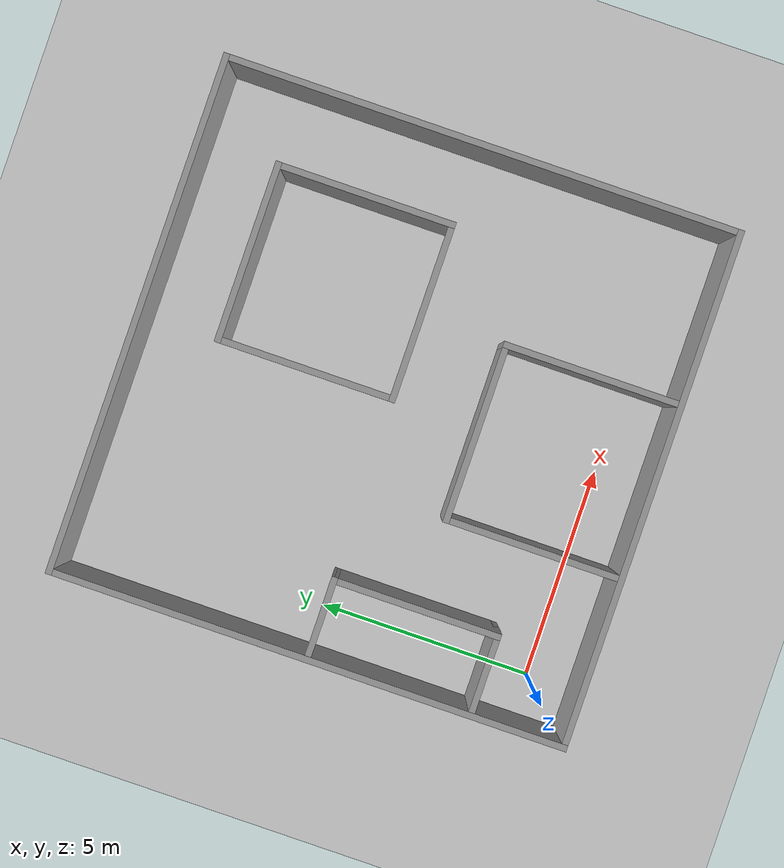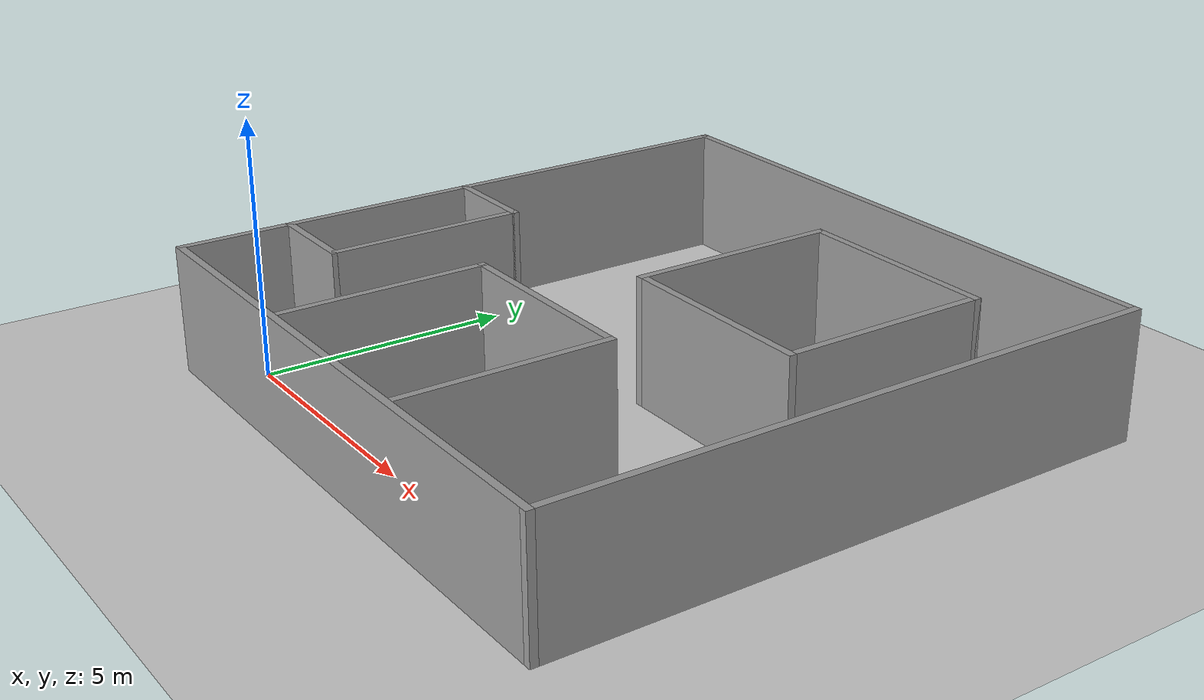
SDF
<sdf version="1.6">
 <world name="default">
  <light name="sun" type="directional">
   <pose>0 0 10 0 -0 0</pose>
   <diffuse>0.8 0.8 0.8 1</diffuse>
   <specular>0.2 0.2 0.2 1</specular>
   <attenuation>
    <range>1000</range>
    <constant>0.9</constant>
    <linear>0.01</linear>
    <quadratic>0.001</quadratic>
   </attenuation>
   <direction>-0.5 0.1 -0.9</direction>
  </light>
  <model name="ground_plane">
   <static>1</static>
   <link name="link">
    <collision name="collision">
     <geometry><plane><normal>0 0 1</normal><size>100 100</size></plane></geometry>
     <surface>
      <contact><collide_bitmask>65535</collide_bitmask></contact>
      <friction><ode><mu>100</mu><mu2>50</mu2></ode></friction>
     </surface>
    </collision>
    <visual name="visual">
     <cast_shadows>0</cast_shadows>
     <geometry><plane><normal>0 0 1</normal><size>100 100</size></plane></geometry>
     <material>
      <script><uri>file://media/materials/scripts/gazebo.material</uri><name>Gazebo/Grey</name></script>
     </material>
    </visual>
   </link>
  </model>
  <gravity>0 0 -9.8</gravity>
  <magnetic_field>6e-06 2.3e-05 -4.2e-05</magnetic_field>
  <atmosphere type="adiabatic"/>
  <physics name="default_physics" default="0" type="ode">
   <max_step_size>0.001</max_step_size>
   <real_time_factor>1</real_time_factor>
   <real_time_update_rate>1000</real_time_update_rate>
  </physics>
  <scene><ambient>0.4 0.4 0.4 1</ambient><background>0.7 0.7 0.7 1</background><shadows>1</shadows></scene>
  <spherical_coordinates>
   <surface_model>EARTH_WGS84</surface_model>
   <latitude_deg>0</latitude_deg>
   <longitude_deg>0</longitude_deg>
   <elevation>0</elevation>
   <heading_deg>0</heading_deg>
  </spherical_coordinates>
  <model name="Room-1">
   <pose>5.04491 4.96478 0 0 0 -1.57273</pose>
   <link name="Wall_76">
    <collision name="Wall_76_Collision">
     <geometry><box><size>12.25 0.15 2.5</size></box></geometry>
     <pose>0 0 1.25 0 -0 0</pose>
    </collision>
    <visual name="Wall_76_Visual">
     <pose>0 0 1.25 0 -0 0</pose>
     <geometry><box><size>12.25 0.15 2.5</size></box></geometry>
     <material>
      <script><uri>file://media/materials/scripts/gazebo.material</uri><name>Gazebo/Grey</name></script>
      <ambient>1 1 1 1</ambient>
     </material>
     <meta><layer>0</layer></meta>
    </visual>
    <pose>-6.05 0 0 0 -0 -1.5708</pose>
   </link>
   <link name="Wall_77">
    <collision name="Wall_77_Collision">
     <geometry><box><size>12.25 0.15 2.5</size></box></geometry>
     <pose>0 0 1.25 0 -0 0</pose>
    </collision>
    <visual name="Wall_77_Visual">
     <pose>0 0 1.25 0 -0 0</pose>
     <geometry><box><size>12.25 0.15 2.5</size></box></geometry>
     <material>
      <script><uri>file://media/materials/scripts/gazebo.material</uri><name>Gazebo/Grey</name></script>
      <ambient>1 1 1 1</ambient>
     </material>
     <meta><layer>0</layer></meta>
    </visual>
    <pose>-0 -6.05 0 0 -0 0</pose>
   </link>
   <link name="Wall_78">
    <collision name="Wall_78_Collision">
     <geometry><box><size>12.25 0.15 2.5</size></box></geometry>
     <pose>0 0 1.25 0 -0 0</pose>
    </collision>
    <visual name="Wall_78_Visual">
     <pose>0 0 1.25 0 -0 0</pose>
     <geometry><box><size>12.25 0.15 2.5</size></box></geometry>
     <material>
      <script><uri>file://media/materials/scripts/gazebo.material</uri><name>Gazebo/Grey</name></script>
      <ambient>1 1 1 1</ambient>
     </material>
     <meta><layer>0</layer></meta>
    </visual>
    <pose>6.05 0 0 0 -0 1.5708</pose>
   </link>
   <link name="Wall_79">
    <collision name="Wall_79_Collision">
     <geometry><box><size>12.25 0.15 2.5</size></box></geometry>
     <pose>0 0 1.25 0 -0 0</pose>
    </collision>
    <visual name="Wall_79_Visual">
     <pose>0 0 1.25 0 -0 0</pose>
     <geometry><box><size>12.25 0.15 2.5</size></box></geometry>
     <material>
      <script><uri>file://media/materials/scripts/gazebo.material</uri><name>Gazebo/Grey</name></script>
      <ambient>1 1 1 1</ambient>
     </material>
     <meta><layer>0</layer></meta>
    </visual>
    <pose>-0 6.05 0 0 -0 3.14159</pose>
   </link>
   <link name="Wall_81">
    <collision name="Wall_81_Collision">
     <geometry><box><size>4.25 0.15 2.5</size></box></geometry>
     <pose>0 0 1.25 0 -0 0</pose>
    </collision>
    <visual name="Wall_81_Visual">
     <pose>0 0 1.25 0 -0 0</pose>
     <geometry><box><size>4.25 0.15 2.5</size></box></geometry>
     <material>
      <script><uri>file://media/materials/scripts/gazebo.material</uri><name>Gazebo/Grey</name></script>
      <ambient>1 1 1 1</ambient>
     </material>
     <meta><layer>0</layer></meta>
    </visual>
    <pose>3.98765 2.00315 0 0 -0 3.14159</pose>
   </link>
   <link name="Wall_82">
    <collision name="Wall_82_Collision">
     <geometry><box><size>4.25 0.15 2.5</size></box></geometry>
     <pose>0 0 1.25 0 -0 0</pose>
    </collision>
    <visual name="Wall_82_Visual">
     <pose>0 0 1.25 0 -0 0</pose>
     <geometry><box><size>4.25 0.15 2.5</size></box></geometry>
     <material>
      <script><uri>file://media/materials/scripts/gazebo.material</uri><name>Gazebo/Grey</name></script>
      <ambient>1 1 1 1</ambient>
     </material>
     <meta><layer>0</layer></meta>
    </visual>
    <pose>1.93765 -0.04685 0 0 -0 -1.5708</pose>
   </link>
   <link name="Wall_83">
    <collision name="Wall_83_Collision">
     <geometry><box><size>4.25 0.15 2.5</size></box></geometry>
     <pose>0 0 1.25 0 -0 0</pose>
    </collision>
    <visual name="Wall_83_Visual">
     <pose>0 0 1.25 0 -0 0</pose>
     <geometry><box><size>4.25 0.15 2.5</size></box></geometry>
     <material>
      <script><uri>file://media/materials/scripts/gazebo.material</uri><name>Gazebo/Grey</name></script>
      <ambient>1 1 1 1</ambient>
     </material>
     <meta><layer>0</layer></meta>
    </visual>
    <pose>3.98765 -2.09685 0 0 -0 0</pose>
   </link>
   <link name="Wall_85">
    <collision name="Wall_85_Collision">
     <geometry><box><size>2 0.15 2.5</size></box></geometry>
     <pose>0 0 1.25 0 -0 0</pose>
    </collision>
    <visual name="Wall_85_Visual">
     <pose>0 0 1.25 0 -0 0</pose>
     <geometry><box><size>2 0.15 2.5</size></box></geometry>
     <material>
      <script><uri>file://media/materials/scripts/gazebo.material</uri><name>Gazebo/Grey</name></script>
      <ambient>1 1 1 1</ambient>
     </material>
     <meta><layer>0</layer></meta>
    </visual>
    <pose>0.00705 -5.11265 0 0 -0 1.5708</pose>
   </link>
   <link name="Wall_86">
    <collision name="Wall_86_Collision">
     <geometry><box><size>4 0.15 2.5</size></box></geometry>
     <pose>0 0 1.25 0 -0 0</pose>
    </collision>
    <visual name="Wall_86_Visual">
     <pose>0 0 1.25 0 -0 0</pose>
     <geometry><box><size>4 0.15 2.5</size></box></geometry>
     <material>
      <script><uri>file://media/materials/scripts/gazebo.material</uri><name>Gazebo/Grey</name></script>
      <ambient>1 1 1 1</ambient>
     </material>
     <meta><layer>0</layer></meta>
    </visual>
    <pose>1.93205 -4.18765 0 0 -0 0</pose>
   </link>
   <link name="Wall_87">
    <collision name="Wall_87_Collision">
     <geometry><box><size>2 0.15 2.5</size></box></geometry>
     <pose>0 0 1.25 0 -0 0</pose>
    </collision>
    <visual name="Wall_87_Visual">
     <pose>0 0 1.25 0 -0 0</pose>
     <geometry><box><size>2 0.15 2.5</size></box></geometry>
     <material>
      <script><uri>file://media/materials/scripts/gazebo.material</uri><name>Gazebo/Grey</name></script>
      <ambient>1 1 1 1</ambient>
     </material>
     <meta><layer>0</layer></meta>
    </visual>
    <pose>3.85705 -5.11265 0 0 -0 -1.5708</pose>
   </link>
   <link name="Wall_89">
    <collision name="Wall_89_Collision">
     <geometry><box><size>4.25 0.15 2.5</size></box></geometry>
     <pose>0 0 1.25 0 -0 0</pose>
    </collision>
    <visual name="Wall_89_Visual">
     <pose>0 0 1.25 0 -0 0</pose>
     <geometry><box><size>4.25 0.15 2.5</size></box></geometry>
     <material>
      <script><uri>file://media/materials/scripts/gazebo.material</uri><name>Gazebo/Grey</name></script>
      <ambient>1 1 1 1</ambient>
     </material>
     <meta><layer>0</layer></meta>
    </visual>
    <pose>-4.17205 2.09585 0 0 -0 1.5708</pose>
   </link>
   <link name="Wall_90">
    <collision name="Wall_90_Collision">
     <geometry><box><size>4.25 0.15 2.5</size></box></geometry>
     <pose>0 0 1.25 0 -0 0</pose>
    </collision>
    <visual name="Wall_90_Visual">
     <pose>0 0 1.25 0 -0 0</pose>
     <geometry><box><size>4.25 0.15 2.5</size></box></geometry>
     <material>
      <script><uri>file://media/materials/scripts/gazebo.material</uri><name>Gazebo/Grey</name></script>
      <ambient>1 1 1 1</ambient>
     </material>
     <meta><layer>0</layer></meta>
    </visual>
    <pose>-2.12205 4.14585 0 0 -0 0</pose>
   </link>
   <link name="Wall_91">
    <collision name="Wall_91_Collision">
     <geometry><box><size>4.25 0.15 2.5</size></box></geometry>
     <pose>0 0 1.25 0 -0 0</pose>
    </collision>
    <visual name="Wall_91_Visual">
     <pose>0 0 1.25 0 -0 0</pose>
     <geometry><box><size>4.25 0.15 2.5</size></box></geometry>
     <material>
      <script><uri>file://media/materials/scripts/gazebo.material</uri><name>Gazebo/Grey</name></script>
      <ambient>1 1 1 1</ambient>
     </material>
     <meta><layer>0</layer></meta>
    </visual>
    <pose>-0.07205 2.09585 0 0 -0 -1.5708</pose>
   </link>
   <link name="Wall_92">
    <collision name="Wall_92_Collision">
     <geometry><box><size>4.25 0.15 2.5</size></box></geometry>
     <pose>0 0 1.25 0 -0 0</pose>
    </collision>
    <visual name="Wall_92_Visual">
     <pose>0 0 1.25 0 -0 0</pose>
     <geometry><box><size>4.25 0.15 2.5</size></box></geometry>
     <material>
      <script><uri>file://media/materials/scripts/gazebo.material</uri><name>Gazebo/Grey</name></script>
      <ambient>1 1 1 1</ambient>
     </material>
     <meta><layer>0</layer></meta>
    </visual>
    <pose>-2.12205 0.04585 0 0 -0 3.14159</pose>
   </link>
   <static>1</static>
  </model>
 </world>
</sdf>
